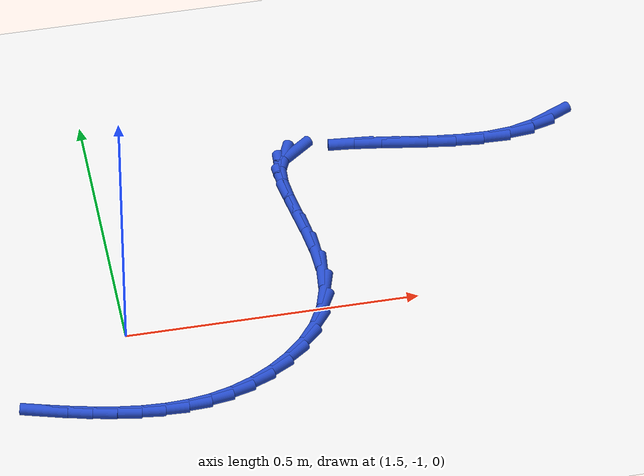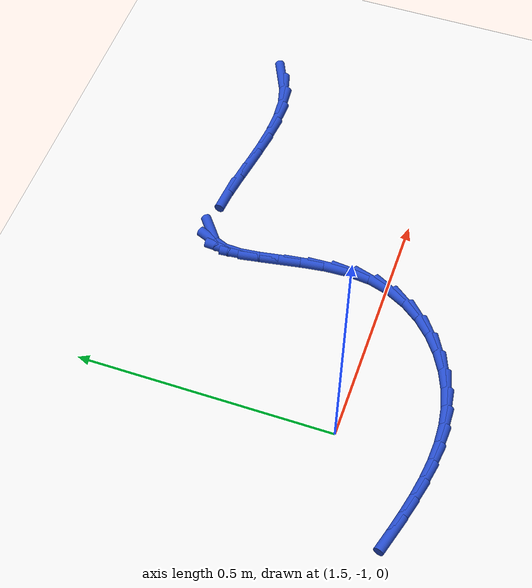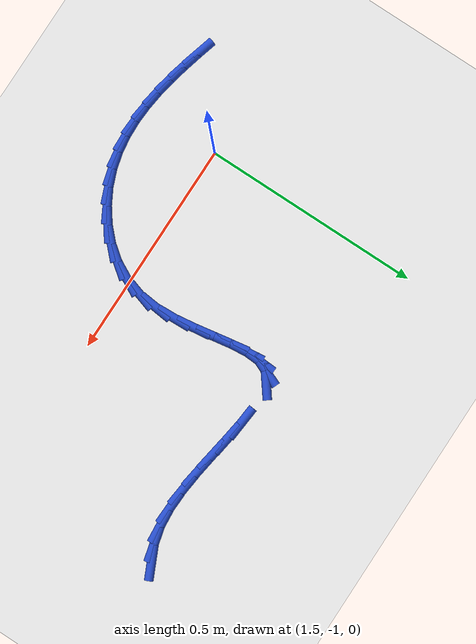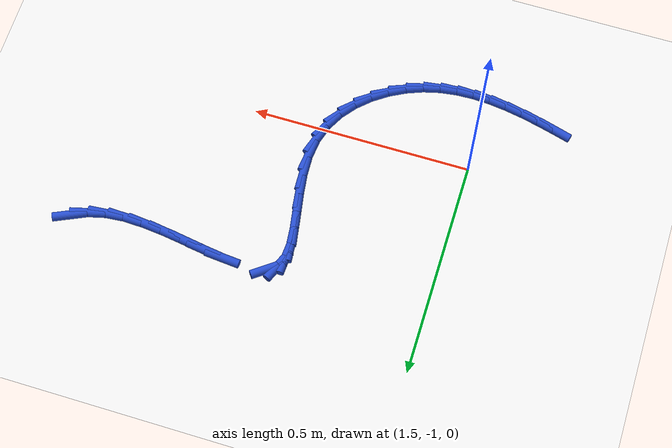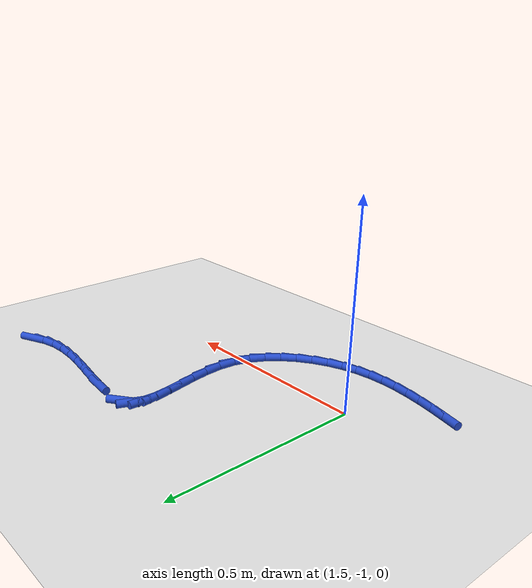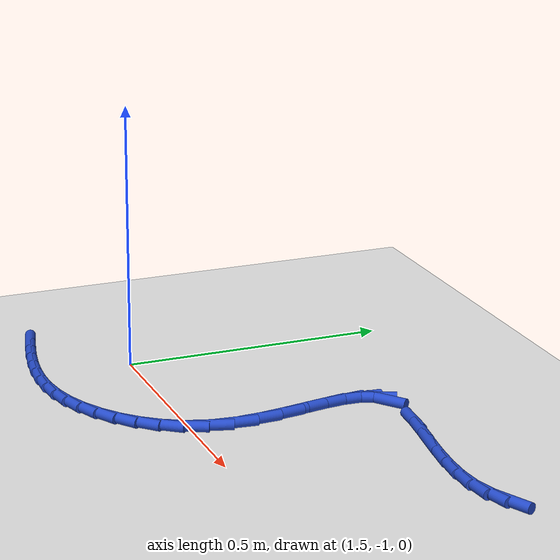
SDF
<sdf version="1.6">
 <world name="default">
  <model name="ground_plane">
   <static>1</static>
   <link name="link">
    <collision name="collision">
     <geometry><plane><normal>0 0 1</normal><size>100 100</size></plane></geometry>
     <surface><friction><ode><mu>100</mu><mu2>50</mu2></ode></friction></surface>
    </collision>
    <visual name="visual">
     <cast_shadows>0</cast_shadows>
     <geometry><plane><normal>0 0 1</normal><size>100 100</size></plane></geometry>
     <material>
      <script><uri>file://media/materials/scripts/gazebo.material</uri><name>Gazebo/WhiteGlow</name></script>
     </material>
    </visual>
   </link>
  </model>
  <model name="line">
   <link name="link_115">
    <pose>2.3096648105138797 -0.6298041839361546 0.01 0 1.57 0.4341325972810814</pose>
    <collision name="collision">
     <geometry><cylinder><radius>0.01</radius><length>0.08</length></cylinder></geometry>
    </collision>
    <visual name="visual">
     <material>
      <script><name>Gazebo/Blue</name><uri>file://media/materials/scripts/gazebo.material</uri></script>
     </material>
     <geometry><cylinder><radius>0.01</radius><length>0.08</length></cylinder></geometry>
    </visual>
   </link>
   <link name="link_116">
    <pose>2.2747607193805943 -0.645986850426397 0.01 0 1.57 0.2505398142873562</pose>
    <collision name="collision">
     <geometry><cylinder><radius>0.01</radius><length>0.08</length></cylinder></geometry>
    </collision>
    <visual name="visual">
     <material>
      <script><name>Gazebo/Blue</name><uri>file://media/materials/scripts/gazebo.material</uri></script>
     </material>
     <geometry><cylinder><radius>0.01</radius><length>0.08</length></cylinder></geometry>
    </visual>
   </link>
   <link name="link_117">
    <pose>2.235529238904461 -0.6560268536254871 0.01 0 1.57 0.08373027293724418</pose>
    <collision name="collision">
     <geometry><cylinder><radius>0.01</radius><length>0.08</length></cylinder></geometry>
    </collision>
    <visual name="visual">
     <material>
      <script><name>Gazebo/Blue</name><uri>file://media/materials/scripts/gazebo.material</uri></script>
     </material>
     <geometry><cylinder><radius>0.01</radius><length>0.08</length></cylinder></geometry>
    </visual>
   </link>
   <link name="link_118">
    <pose>2.1920379052268477 -0.6596769287860835 0.01 0 1.57 -0.03416076899609023</pose>
    <collision name="collision">
     <geometry><cylinder><radius>0.01</radius><length>0.08</length></cylinder></geometry>
    </collision>
    <visual name="visual">
     <material>
      <script><name>Gazebo/Blue</name><uri>file://media/materials/scripts/gazebo.material</uri></script>
     </material>
     <geometry><cylinder><radius>0.01</radius><length>0.08</length></cylinder></geometry>
    </visual>
   </link>
   <link name="link_119">
    <pose>2.145398294338139 -0.6580830637729583 0.01 0 1.57 -0.10769399604866027</pose>
    <collision name="collision">
     <geometry><cylinder><radius>0.01</radius><length>0.08</length></cylinder></geometry>
    </collision>
    <visual name="visual">
     <material>
      <script><name>Gazebo/Blue</name><uri>file://media/materials/scripts/gazebo.material</uri></script>
     </material>
     <geometry><cylinder><radius>0.01</radius><length>0.08</length></cylinder></geometry>
    </visual>
   </link>
   <link name="link_120">
    <pose>2.097072048021023 -0.6528584030254135 0.01 0 1.57 -0.1480704891447392</pose>
    <collision name="collision">
     <geometry><cylinder><radius>0.01</radius><length>0.08</length></cylinder></geometry>
    </collision>
    <visual name="visual">
     <material>
      <script><name>Gazebo/Blue</name><uri>file://media/materials/scripts/gazebo.material</uri></script>
     </material>
     <geometry><cylinder><radius>0.01</radius><length>0.08</length></cylinder></geometry>
    </visual>
   </link>
   <link name="link_121">
    <pose>2.048521062808697 -0.6456164309427727 0.01 0 1.57 -0.16021255463103562</pose>
    <collision name="collision">
     <geometry><cylinder><radius>0.01</radius><length>0.08</length></cylinder></geometry>
    </collision>
    <visual name="visual">
     <material>
      <script><name>Gazebo/Blue</name><uri>file://media/materials/scripts/gazebo.material</uri></script>
     </material>
     <geometry><cylinder><radius>0.01</radius><length>0.08</length></cylinder></geometry>
    </visual>
   </link>
   <link name="link_122">
    <pose>2.001207235234357 -0.6379706319243597 0.01 0 1.57 -0.1432718987280622</pose>
    <collision name="collision">
     <geometry><cylinder><radius>0.01</radius><length>0.08</length></cylinder></geometry>
    </collision>
    <visual name="visual">
     <material>
      <script><name>Gazebo/Blue</name><uri>file://media/materials/scripts/gazebo.material</uri></script>
     </material>
     <geometry><cylinder><radius>0.01</radius><length>0.08</length></cylinder></geometry>
    </visual>
   </link>
   <link name="link_123">
    <pose>1.9565924618311992 -0.6315344903694986 0.01 0 1.57 -0.08907536314549586</pose>
    <collision name="collision">
     <geometry><cylinder><radius>0.01</radius><length>0.08</length></cylinder></geometry>
    </collision>
    <visual name="visual">
     <material>
      <script><name>Gazebo/Blue</name><uri>file://media/materials/scripts/gazebo.material</uri></script>
     </material>
     <geometry><cylinder><radius>0.01</radius><length>0.08</length></cylinder></geometry>
    </visual>
   </link>
   <link name="link_126">
    <pose>1.8535614319807856 -0.6356188544794662 0.01 0 1.57 0.6480733994438785</pose>
    <collision name="collision">
     <geometry><cylinder><radius>0.01</radius><length>0.08</length></cylinder></geometry>
    </collision>
    <visual name="visual">
     <material>
      <script><name>Gazebo/Blue</name><uri>file://media/materials/scripts/gazebo.material</uri></script>
     </material>
     <geometry><cylinder><radius>0.01</radius><length>0.08</length></cylinder></geometry>
    </visual>
   </link>
   <link name="link_127">
    <pose>1.8343618405943225 -0.6501561867720522 0.01 0 1.57 1.1800466169321984</pose>
    <collision name="collision">
     <geometry><cylinder><radius>0.01</radius><length>0.08</length></cylinder></geometry>
    </collision>
    <visual name="visual">
     <material>
      <script><name>Gazebo/Blue</name><uri>file://media/materials/scripts/gazebo.material</uri></script>
     </material>
     <geometry><cylinder><radius>0.01</radius><length>0.08</length></cylinder></geometry>
    </visual>
   </link>
   <link name="link_128">
    <pose>1.8247117649127227 -0.6735825914536734 0.01 0 1.57 1.5184003327059359</pose>
    <collision name="collision">
     <geometry><cylinder><radius>0.01</radius><length>0.08</length></cylinder></geometry>
    </collision>
    <visual name="visual">
     <material>
      <script><name>Gazebo/Blue</name><uri>file://media/materials/scripts/gazebo.material</uri></script>
     </material>
     <geometry><cylinder><radius>0.01</radius><length>0.08</length></cylinder></geometry>
    </visual>
   </link>
   <link name="link_129">
    <pose>1.8230657136599726 -0.704969430887196 0.01 0 1.57 -1.4667764541587083</pose>
    <collision name="collision">
     <geometry><cylinder><radius>0.01</radius><length>0.08</length></cylinder></geometry>
    </collision>
    <visual name="visual">
     <material>
      <script><name>Gazebo/Blue</name><uri>file://media/materials/scripts/gazebo.material</uri></script>
     </material>
     <geometry><cylinder><radius>0.01</radius><length>0.08</length></cylinder></geometry>
    </visual>
   </link>
   <link name="link_130">
    <pose>1.8269988971918454 -0.7426448032140888 0.01 0 1.57 -1.4047677873784905</pose>
    <collision name="collision">
     <geometry><cylinder><radius>0.01</radius><length>0.08</length></cylinder></geometry>
    </collision>
    <visual name="visual">
     <material>
      <script><name>Gazebo/Blue</name><uri>file://media/materials/scripts/gazebo.material</uri></script>
     </material>
     <geometry><cylinder><radius>0.01</radius><length>0.08</length></cylinder></geometry>
    </visual>
   </link>
   <link name="link_131">
    <pose>1.8340856974674407 -0.7849361063384122 0.01 0 1.57 -1.3997235488478121</pose>
    <collision name="collision">
     <geometry><cylinder><radius>0.01</radius><length>0.08</length></cylinder></geometry>
    </collision>
    <visual name="visual">
     <material>
      <script><name>Gazebo/Blue</name><uri>file://media/materials/scripts/gazebo.material</uri></script>
     </material>
     <geometry><cylinder><radius>0.01</radius><length>0.08</length></cylinder></geometry>
    </visual>
   </link>
   <link name="link_132">
    <pose>1.8419004964458536 -0.8301707381642258 0.01 0 1.57 -1.4400100733704635</pose>
    <collision name="collision">
     <geometry><cylinder><radius>0.01</radius><length>0.08</length></cylinder></geometry>
    </collision>
    <visual name="visual">
     <material>
      <script><name>Gazebo/Blue</name><uri>file://media/materials/scripts/gazebo.material</uri></script>
     </material>
     <geometry><cylinder><radius>0.01</radius><length>0.08</length></cylinder></geometry>
    </visual>
   </link>
   <link name="link_133">
    <pose>1.848017676086183 -0.87667609659559 0.01 0 1.57 -1.5275739864267757</pose>
    <collision name="collision">
     <geometry><cylinder><radius>0.01</radius><length>0.08</length></cylinder></geometry>
    </collision>
    <visual name="visual">
     <material>
      <script><name>Gazebo/Blue</name><uri>file://media/materials/scripts/gazebo.material</uri></script>
     </material>
     <geometry><cylinder><radius>0.01</radius><length>0.08</length></cylinder></geometry>
    </visual>
   </link>
   <link name="link_134">
    <pose>1.8500116183475266 -0.922779579536565 0.01 0 1.57 1.467847216945435</pose>
    <collision name="collision">
     <geometry><cylinder><radius>0.01</radius><length>0.08</length></cylinder></geometry>
    </collision>
    <visual name="visual">
     <material>
      <script><name>Gazebo/Blue</name><uri>file://media/materials/scripts/gazebo.material</uri></script>
     </material>
     <geometry><cylinder><radius>0.01</radius><length>0.08</length></cylinder></geometry>
    </visual>
   </link>
   <link name="link_135">
    <pose>1.8454625497533557 -0.9668109082549198 0.01 0 1.57 1.2735728293104531</pose>
    <collision name="collision">
     <geometry><cylinder><radius>0.01</radius><length>0.08</length></cylinder></geometry>
    </collision>
    <visual name="visual">
     <material>
      <script><name>Gazebo/Blue</name><uri>file://media/materials/scripts/gazebo.material</uri></script>
     </material>
     <geometry><cylinder><radius>0.01</radius><length>0.08</length></cylinder></geometry>
    </visual>
   </link>
   <link name="link_136">
    <pose>1.8329950356814368 -1.0075149554032676 0.01 0 1.57 1.0854697910079394</pose>
    <collision name="collision">
     <geometry><cylinder><radius>0.01</radius><length>0.08</length></cylinder></geometry>
    </collision>
    <visual name="visual">
     <material>
      <script><name>Gazebo/Blue</name><uri>file://media/materials/scripts/gazebo.material</uri></script>
     </material>
     <geometry><cylinder><radius>0.01</radius><length>0.08</length></cylinder></geometry>
    </visual>
   </link>
   <link name="link_137">
    <pose>1.8134746474155576 -1.044527450755456 0.01 0 1.57 0.9155211207445789</pose>
    <collision name="collision">
     <geometry><cylinder><radius>0.01</radius><length>0.08</length></cylinder></geometry>
    </collision>
    <visual name="visual">
     <material>
      <script><name>Gazebo/Blue</name><uri>file://media/materials/scripts/gazebo.material</uri></script>
     </material>
     <geometry><cylinder><radius>0.01</radius><length>0.08</length></cylinder></geometry>
    </visual>
   </link>
   <link name="link_138">
    <pose>1.7880568409401993 -1.0775993606624683 0.01 0 1.57 0.7637647955205934</pose>
    <collision name="collision">
     <geometry><cylinder><radius>0.01</radius><length>0.08</length></cylinder></geometry>
    </collision>
    <visual name="visual">
     <material>
      <script><name>Gazebo/Blue</name><uri>file://media/materials/scripts/gazebo.material</uri></script>
     </material>
     <geometry><cylinder><radius>0.01</radius><length>0.08</length></cylinder></geometry>
    </visual>
   </link>
   <link name="link_139">
    <pose>1.7578970722398461 -1.1064816514752878 0.01 0 1.57 0.6268727508522606</pose>
    <collision name="collision">
     <geometry><cylinder><radius>0.01</radius><length>0.08</length></cylinder></geometry>
    </collision>
    <visual name="visual">
     <material>
      <script><name>Gazebo/Blue</name><uri>file://media/materials/scripts/gazebo.material</uri></script>
     </material>
     <geometry><cylinder><radius>0.01</radius><length>0.08</length></cylinder></geometry>
    </visual>
   </link>
   <link name="link_140">
    <pose>1.72415079729898 -1.1309252895448976 0.01 0 1.57 0.4998336992750428</pose>
    <collision name="collision">
     <geometry><cylinder><radius>0.01</radius><length>0.08</length></cylinder></geometry>
    </collision>
    <visual name="visual">
     <material>
      <script><name>Gazebo/Blue</name><uri>file://media/materials/scripts/gazebo.material</uri></script>
     </material>
     <geometry><cylinder><radius>0.01</radius><length>0.08</length></cylinder></geometry>
    </visual>
   </link>
   <link name="link_141">
    <pose>1.687973472102084 -1.150681241222281 0.01 0 1.57 0.3767926158107305</pose>
    <collision name="collision">
     <geometry><cylinder><radius>0.01</radius><length>0.08</length></cylinder></geometry>
    </collision>
    <visual name="visual">
     <material>
      <script><name>Gazebo/Blue</name><uri>file://media/materials/scripts/gazebo.material</uri></script>
     </material>
     <geometry><cylinder><radius>0.01</radius><length>0.08</length></cylinder></geometry>
    </visual>
   </link>
   <link name="link_142">
    <pose>1.6505177040133523 -1.1655024289935654 0.01 0 1.57 0.2548217651621382</pose>
    <collision name="collision">
     <geometry><cylinder><radius>0.01</radius><length>0.08</length></cylinder></geometry>
    </collision>
    <visual name="visual">
     <material>
      <script><name>Gazebo/Blue</name><uri>file://media/materials/scripts/gazebo.material</uri></script>
     </material>
     <geometry><cylinder><radius>0.01</radius><length>0.08</length></cylinder></geometry>
    </visual>
   </link>
   <link name="link_143">
    <pose>1.6125839829365247 -1.175383572871226 0.01 0 1.57 0.140282080837472</pose>
    <collision name="collision">
     <geometry><cylinder><radius>0.01</radius><length>0.08</length></cylinder></geometry>
    </collision>
    <visual name="visual">
     <material>
      <script><name>Gazebo/Blue</name><uri>file://media/materials/scripts/gazebo.material</uri></script>
     </material>
     <geometry><cylinder><radius>0.01</radius><length>0.08</length></cylinder></geometry>
    </visual>
   </link>
   <link name="link_144">
    <pose>1.574284898761005 -1.1807917708112396 0.01 0 1.57 0.037697817040989096</pose>
    <collision name="collision">
     <geometry><cylinder><radius>0.01</radius><length>0.08</length></cylinder></geometry>
    </collision>
    <visual name="visual">
     <material>
      <script><name>Gazebo/Blue</name><uri>file://media/materials/scripts/gazebo.material</uri></script>
     </material>
     <geometry><cylinder><radius>0.01</radius><length>0.08</length></cylinder></geometry>
    </visual>
   </link>
   <link name="link_145">
    <pose>1.535653439919816 -1.1822487827429535 0.01 0 1.57 -0.05062127668221632</pose>
    <collision name="collision">
     <geometry><cylinder><radius>0.01</radius><length>0.08</length></cylinder></geometry>
    </collision>
    <visual name="visual">
     <material>
      <script><name>Gazebo/Blue</name><uri>file://media/materials/scripts/gazebo.material</uri></script>
     </material>
     <geometry><cylinder><radius>0.01</radius><length>0.08</length></cylinder></geometry>
    </visual>
   </link>
   <link name="link_146">
    <pose>1.4967225948459804 -1.1802763685957163 0.01 0 1.57 -0.12386324846201772</pose>
    <collision name="collision">
     <geometry><cylinder><radius>0.01</radius><length>0.08</length></cylinder></geometry>
    </collision>
    <visual name="visual">
     <material>
      <script><name>Gazebo/Blue</name><uri>file://media/materials/scripts/gazebo.material</uri></script>
     </material>
     <geometry><cylinder><radius>0.01</radius><length>0.08</length></cylinder></geometry>
    </visual>
   </link>
   <link name="link_147">
    <pose>1.457525351972521 -1.1753962882988749 0.01 0 1.57 -0.18222829005466173</pose>
    <collision name="collision">
     <geometry><cylinder><radius>0.01</radius><length>0.08</length></cylinder></geometry>
    </collision>
    <visual name="visual">
     <material>
      <script><name>Gazebo/Blue</name><uri>file://media/materials/scripts/gazebo.material</uri></script>
     </material>
     <geometry><cylinder><radius>0.01</radius><length>0.08</length></cylinder></geometry>
    </visual>
   </link>
   <link name="link_148">
    <pose>1.4180946997324595 -1.168130301781777 0.01 0 1.57 -0.22642749695578598</pose>
    <collision name="collision">
     <geometry><cylinder><radius>0.01</radius><length>0.08</length></cylinder></geometry>
    </collision>
    <visual name="visual">
     <material>
      <script><name>Gazebo/Blue</name><uri>file://media/materials/scripts/gazebo.material</uri></script>
     </material>
     <geometry><cylinder><radius>0.01</radius><length>0.08</length></cylinder></geometry>
    </visual>
   </link>
   <link name="link_149">
    <pose>1.3784636265588195 -1.1590001689737708 0.01 0 1.57 -0.2573055782625417</pose>
    <collision name="collision">
     <geometry><cylinder><radius>0.01</radius><length>0.08</length></cylinder></geometry>
    </collision>
    <visual name="visual">
     <material>
      <script><name>Gazebo/Blue</name><uri>file://media/materials/scripts/gazebo.material</uri></script>
     </material>
     <geometry><cylinder><radius>0.01</radius><length>0.08</length></cylinder></geometry>
    </visual>
   </link>
   <link name="link_150">
    <pose>1.3386651208846228 -1.1485276498042034 0.01 0 1.57 -0.2756057408693338</pose>
    <collision name="collision">
     <geometry><cylinder><radius>0.01</radius><length>0.08</length></cylinder></geometry>
    </collision>
    <visual name="visual">
     <material>
      <script><name>Gazebo/Blue</name><uri>file://media/materials/scripts/gazebo.material</uri></script>
     </material>
     <geometry><cylinder><radius>0.01</radius><length>0.08</length></cylinder></geometry>
    </visual>
   </link>
  </model>
 </world>
</sdf>
